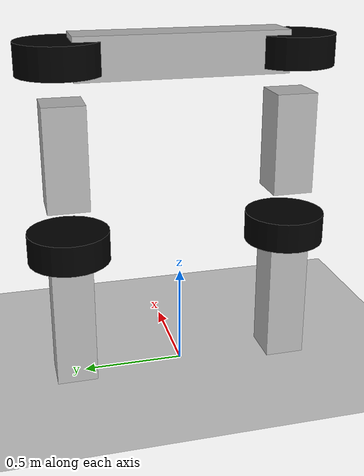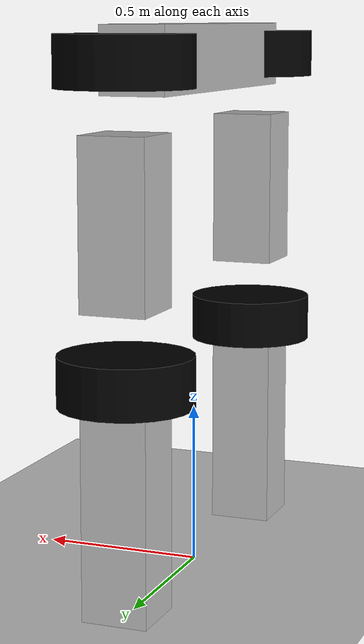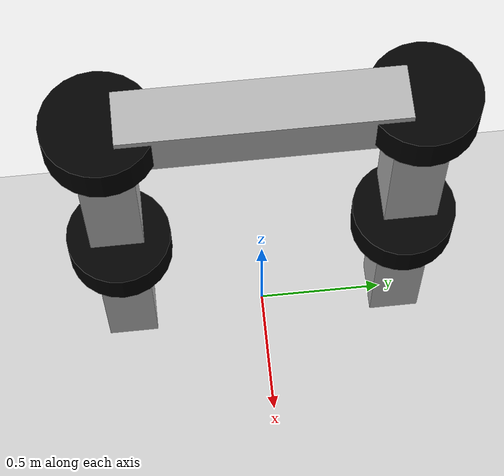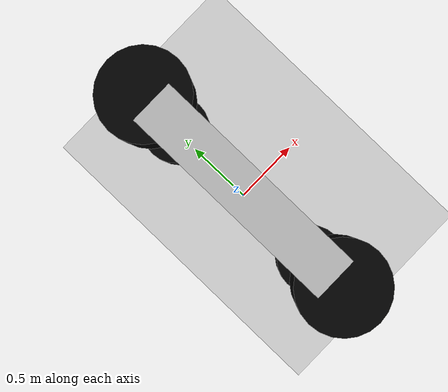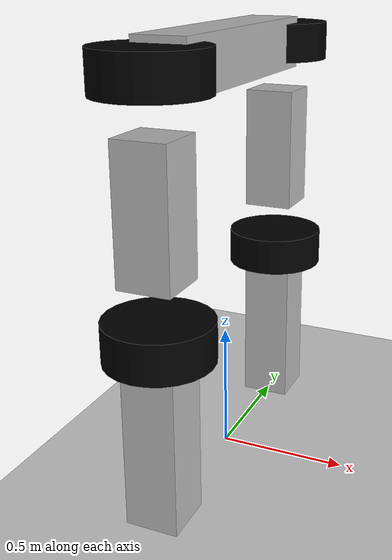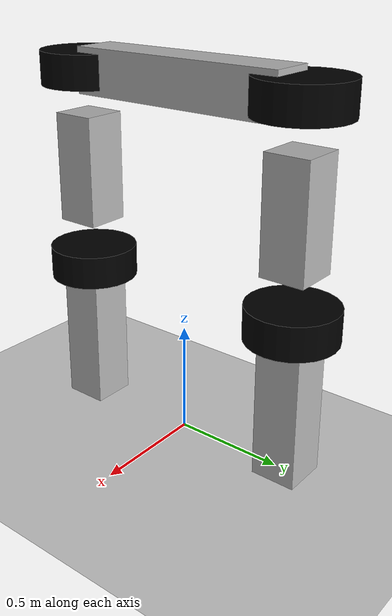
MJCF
<mujoco model="exo_model">
  <compiler angle="radian" meshdir="meshes"/>

  <!-- Assets -->
  <asset>
    <texture name="texplane" type="2d" builtin="checker" rgb1="0 0 0" rgb2="0.8 0.8 0.8" width="100" height="100"/>
    <material name="matplane" reflectance="0" texture="texplane" texrepeat="1 1" texuniform="true"/>
    <material name="black" rgba="0 0 0 1"/>
    <material name="grey" rgba="0.7 0.7 0.7 1"/>
    <material name="default_material" rgba="0.7 0.7 0.7 1"/>
  </asset>

  <!-- Worldbody -->
  <worldbody>
    <!-- Lights -->
    <light directional="true" diffuse="0.4 0.4 0.4" specular="0.1 0.1 0.1" pos="0 0 5" dir="0 0 -1" castshadow="false"/>
    <light directional="true" diffuse="0.6 0.6 0.6" specular="0.2 0.2 0.2" pos="0 0 4" dir="0 0 -1"/>

    <!-- Ground -->
    <geom name="ground" type="plane" pos="0 0 0" size="10 10 0.001" rgba="0.8 0.8 0.8 1" condim="3" conaffinity="15"/>

    <!-- Robot root -->
    <body name="root" pos="0 0 1.6">
      <freejoint name="root"/>
      <site name="root_site" pos="0 0 0"/>

      <body name="base_link" pos="0 0 0">
        <geom name="base_link_visual_0" type="box" size="0.1 0.5 0.1" rgba="0.7 0.7 0.7 1"/>

        <!-- Left leg -->
        <body name="left_hip_motor_link" pos="0 -0.55 0">
          <joint name="left_hip_joint" type="hinge" axis="0 1 0" range="-1.5 1.5"
                 limited="true" damping="0.01" armature="0.01" frictionloss="0.01"/>
          <inertial pos="0 0 0" mass="0.3" diag="0.002 0.002 0.002"/>
          <geom name="left_hip_motor_link_visual" type="cylinder" size="0.2 0.075" material="black"
                condim="4" contype="1" conaffinity="15" friction="0.9 0.2 0.2" solref="0.001 2"/>

          <body name="left_thigh_stand_link" pos="0 0 -0.2">
            <inertial pos="0 0 -0.25" mass="1.0" diag="0.0341667 0.0241667 0.0166667"/>
            <geom name="left_thigh_stand_link_visual" type="box" size="0.1 0.1 0.25" material="grey"
                  pos="0 0 -0.25" condim="4" contype="1" conaffinity="15" friction="0.9 0.2 0.2" solref="0.001 2"/>

            <body name="left_knee_motor_link" pos="0 0 -0.7">
              <inertial pos="0 0 0" mass="0.3" diag="0.002 0.002 0.002"/>
              <geom name="left_knee_motor_link_visual" type="cylinder" size="0.2 0.075" material="black"
                    condim="4" contype="1" conaffinity="15" friction="0.9 0.2 0.2" solref="0.001 2"/>

              <body name="left_shin_stand_link" pos="0 0 0">
                <joint name="left_knee_joint" type="hinge" axis="0 1 0" range="0 1.5"
                       limited="true" damping="0.01" armature="0.01" frictionloss="0.01"/>
                <inertial pos="0 0 -0.35" mass="1.2" diag="0.065 0.053 0.02"/>
                <geom name="left_shin_stand_link_visual" type="box" size="0.1 0.1 0.35" material="grey"
                      pos="0 0 -0.35" condim="4" contype="1" conaffinity="15" friction="0.9 0.2 0.2" solref="0.001 2"/>
              </body>
            </body>
          </body>
        </body>

        <!-- Right leg -->
        <body name="right_hip_motor_link" pos="0 0.55 0">
          <joint name="right_hip_joint" type="hinge" axis="0 1 0" range="-1.5 1.5"
                 limited="true" damping="0.01" armature="0.01" frictionloss="0.01"/>
          <inertial pos="0 0 0" mass="0.3" diag="0.002 0.002 0.002"/>
          <geom name="right_hip_motor_link_visual" type="cylinder" size="0.2 0.075" material="black"
                condim="4" contype="1" conaffinity="15" friction="0.9 0.2 0.2" solref="0.001 2"/>

          <body name="right_thigh_stand_link" pos="0 0 -0.2">
            <inertial pos="0 0 -0.25" mass="1.0" diag="0.0341667 0.0241667 0.0166667"/>
            <geom name="right_thigh_stand_link_visual" type="box" size="0.1 0.1 0.25" material="grey"
                  pos="0 0 -0.25" condim="4" contype="1" conaffinity="15" friction="0.9 0.2 0.2" solref="0.001 2"/>

            <body name="right_knee_motor_link" pos="0 0 -0.7">
              <inertial pos="0 0 0" mass="0.3" diag="0.002 0.002 0.002"/>
              <geom name="right_knee_motor_link_visual" type="cylinder" size="0.2 0.075" material="black"
                    condim="4" contype="1" conaffinity="15" friction="0.9 0.2 0.2" solref="0.001 2"/>

              <body name="right_shin_stand_link" pos="0 0 0">
                <joint name="right_knee_joint" type="hinge" axis="0 1 0" range="0 1.5"
                       limited="true" damping="0.01" armature="0.01" frictionloss="0.01"/>
                <inertial pos="0 0 -0.35" mass="1.2" diag="0.065 0.053 0.02"/>
                <geom name="right_shin_stand_link_visual" type="box" size="0.1 0.1 0.35" material="grey"
                      pos="0 0 -0.35" condim="4" contype="1" conaffinity="15" friction="0.9 0.2 0.2" solref="0.001 2"/>
              </body>
            </body>
          </body>
        </body>

      </body>
    </body>
  </worldbody>

  <!-- Actuators -->
  <actuator>
    <position name="left_hip_joint_ctrl" joint="left_hip_joint" forcerange="-60 60" forcelimited="true" ctrlrange="-1.5 1.5" ctrllimited="true"/>
    <position name="left_knee_joint_ctrl" joint="left_knee_joint" forcerange="-40 40" forcelimited="true" ctrlrange="0 1.5" ctrllimited="true"/>
    <position name="right_hip_joint_ctrl" joint="right_hip_joint" forcerange="-60 60" forcelimited="true" ctrlrange="-1.5 1.5" ctrllimited="true"/>
    <position name="right_knee_joint_ctrl" joint="right_knee_joint" forcerange="-40 40" forcelimited="true" ctrlrange="0 1.5" ctrllimited="true"/>
  </actuator>

  <!-- Sensors -->
  <sensor>
    <framepos name="base_link_pos" objtype="site" objname="root_site"/>
    <framequat name="base_link_quat" objtype="site" objname="root_site"/>
    <framelinvel name="base_link_vel" objtype="site" objname="root_site"/>
    <frameangvel name="base_link_ang_vel" objtype="site" objname="root_site"/>
  </sensor>

</mujoco>
